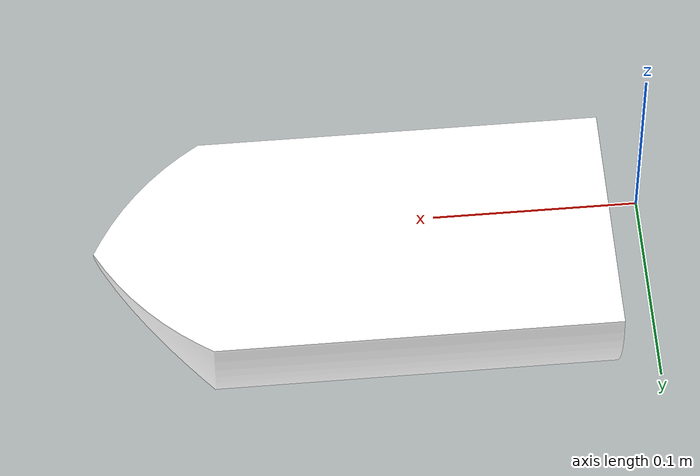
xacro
<?xml version="1.0" ?>
<robot name="aries" xmlns:xacro="http://www.ros.org/wiki/xacro">
  <!--                            BOAT HULL                                  -->
  <link name="boat_hull">
    <visual name="boat_hill_visual">
      <geometry>
        <mesh filename="file://$(find gazebo_simulation)/urdf/collada/boat_hull_LAA.dae" />
      </geometry>
    </visual>

    <inertial>
       <mass value="0.8" />
       <inertia
         ixx="0.0000020778656"
         ixy="-0.000000089099184"
         ixz="0.0000000000189384648"
         iyy="0.00000824124569"
         iyz="0.0000000000531947773"
         izz="0.0000070840279"
       />
    </inertial>

    <buoyancy>
      <compensation>2.60</compensation>
      <origin xyz="0 0 0.0"/>
      <limit radius="0.031"/>
      <damping xyz="60 100 100"/>
    </buoyancy>
  </link>

  <gazebo>
    <static>false</static>
  </gazebo>

</robot>
